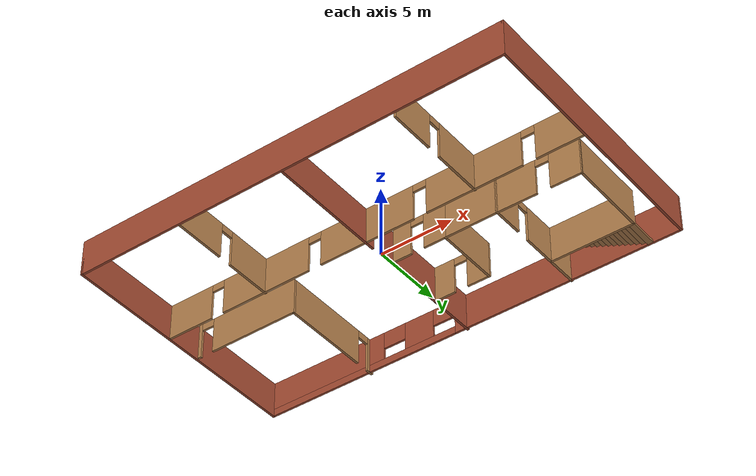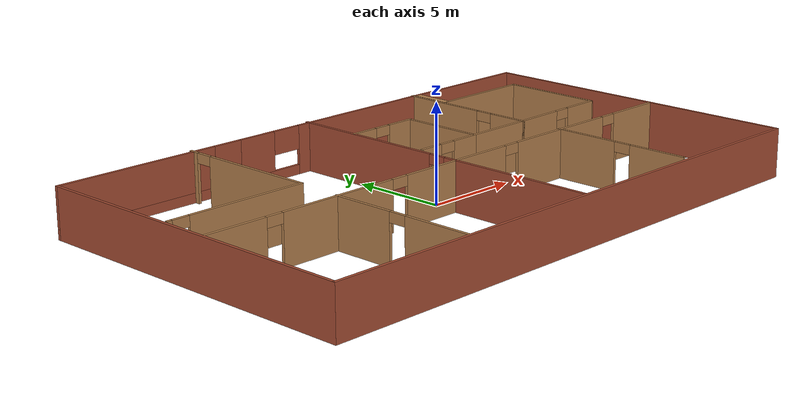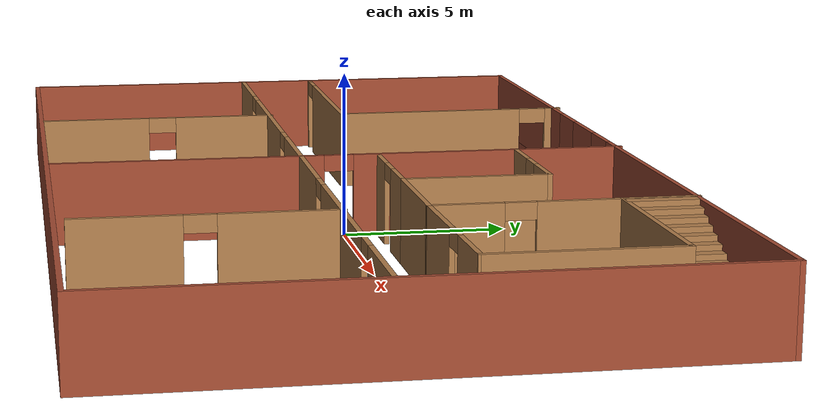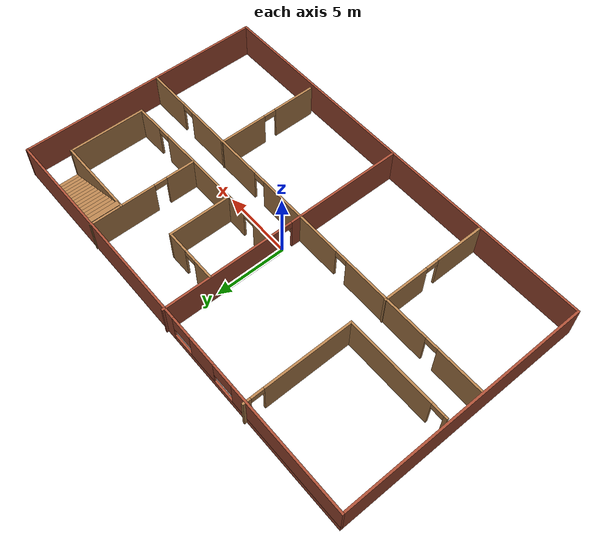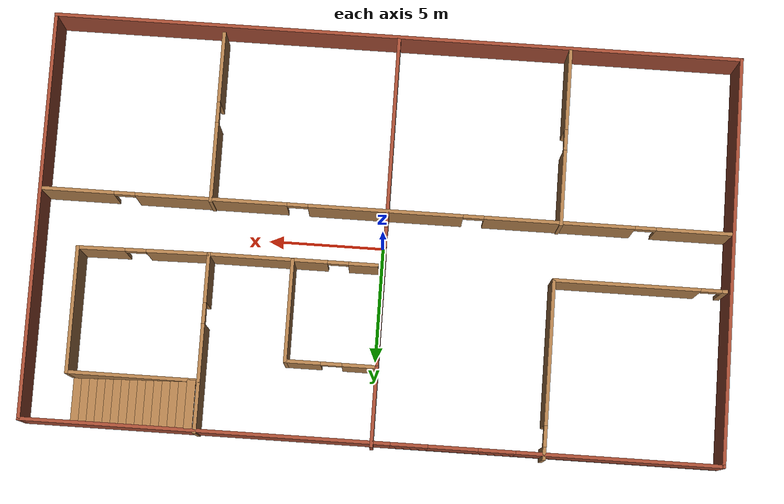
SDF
<?xml version='1.0'?>
<sdf version='1.6'>
  <model name='myoffice'>
    <pose frame=''>-0.068289 -0.110677 0 0 -0 0</pose>
    <link name='Stairs_0'>
      <visual name='Stairs_0_Visual_0'>
        <pose frame=''>12.9102 7.62798 0.083333 0 -0 -1.5708</pose>
        <geometry>
          <box>
            <size>2.0695 0.368539 0.166667</size>
          </box>
        </geometry>
        <material>
          <script>
            <uri>file://media/materials/scripts/gazebo.material</uri>
            <name>Gazebo/Wood</name>
          </script>
          <ambient>1 1 1 1</ambient>
        </material>
      </visual>
      <collision name='Stairs_0_Collision_0'>
        <geometry>
          <box>
            <size>2.0695 0.368539 0.166667</size>
          </box>
        </geometry>
        <pose frame=''>12.9102 7.62798 0.083333 0 -0 -1.5708</pose>
      </collision>
      <visual name='Stairs_0_Visual_1'>
        <pose frame=''>12.5417 7.62799 0.25 0 -0 -1.5708</pose>
        <geometry>
          <box>
            <size>2.0695 0.368539 0.166667</size>
          </box>
        </geometry>
        <material>
          <script>
            <uri>file://media/materials/scripts/gazebo.material</uri>
            <name>Gazebo/Wood</name>
          </script>
          <ambient>1 1 1 1</ambient>
        </material>
      </visual>
      <collision name='Stairs_0_Collision_1'>
        <geometry>
          <box>
            <size>2.0695 0.368539 0.166667</size>
          </box>
        </geometry>
        <pose frame=''>12.5417 7.62799 0.25 0 -0 -1.5708</pose>
      </collision>
      <visual name='Stairs_0_Visual_2'>
        <pose frame=''>12.1732 7.62799 0.416667 0 -0 -1.5708</pose>
        <geometry>
          <box>
            <size>2.0695 0.368539 0.166667</size>
          </box>
        </geometry>
        <material>
          <script>
            <uri>file://media/materials/scripts/gazebo.material</uri>
            <name>Gazebo/Wood</name>
          </script>
          <ambient>1 1 1 1</ambient>
        </material>
      </visual>
      <collision name='Stairs_0_Collision_2'>
        <geometry>
          <box>
            <size>2.0695 0.368539 0.166667</size>
          </box>
        </geometry>
        <pose frame=''>12.1732 7.62799 0.416667 0 -0 -1.5708</pose>
      </collision>
      <visual name='Stairs_0_Visual_3'>
        <pose frame=''>11.8046 7.62799 0.583333 0 -0 -1.5708</pose>
        <geometry>
          <box>
            <size>2.0695 0.368539 0.166667</size>
          </box>
        </geometry>
        <material>
          <script>
            <uri>file://media/materials/scripts/gazebo.material</uri>
            <name>Gazebo/Wood</name>
          </script>
          <ambient>1 1 1 1</ambient>
        </material>
      </visual>
      <collision name='Stairs_0_Collision_3'>
        <geometry>
          <box>
            <size>2.0695 0.368539 0.166667</size>
          </box>
        </geometry>
        <pose frame=''>11.8046 7.62799 0.583333 0 -0 -1.5708</pose>
      </collision>
      <visual name='Stairs_0_Visual_4'>
        <pose frame=''>11.4361 7.62799 0.75 0 -0 -1.5708</pose>
        <geometry>
          <box>
            <size>2.0695 0.368539 0.166667</size>
          </box>
        </geometry>
        <material>
          <script>
            <uri>file://media/materials/scripts/gazebo.material</uri>
            <name>Gazebo/Wood</name>
          </script>
          <ambient>1 1 1 1</ambient>
        </material>
      </visual>
      <collision name='Stairs_0_Collision_4'>
        <geometry>
          <box>
            <size>2.0695 0.368539 0.166667</size>
          </box>
        </geometry>
        <pose frame=''>11.4361 7.62799 0.75 0 -0 -1.5708</pose>
      </collision>
      <visual name='Stairs_0_Visual_5'>
        <pose frame=''>11.0675 7.62799 0.916667 0 -0 -1.5708</pose>
        <geometry>
          <box>
            <size>2.0695 0.368539 0.166667</size>
          </box>
        </geometry>
        <material>
          <script>
            <uri>file://media/materials/scripts/gazebo.material</uri>
            <name>Gazebo/Wood</name>
          </script>
          <ambient>1 1 1 1</ambient>
        </material>
      </visual>
      <collision name='Stairs_0_Collision_5'>
        <geometry>
          <box>
            <size>2.0695 0.368539 0.166667</size>
          </box>
        </geometry>
        <pose frame=''>11.0675 7.62799 0.916667 0 -0 -1.5708</pose>
      </collision>
      <visual name='Stairs_0_Visual_6'>
        <pose frame=''>10.699 7.62799 1.08333 0 -0 -1.5708</pose>
        <geometry>
          <box>
            <size>2.0695 0.368539 0.166667</size>
          </box>
        </geometry>
        <material>
          <script>
            <uri>file://media/materials/scripts/gazebo.material</uri>
            <name>Gazebo/Wood</name>
          </script>
          <ambient>1 1 1 1</ambient>
        </material>
      </visual>
      <collision name='Stairs_0_Collision_6'>
        <geometry>
          <box>
            <size>2.0695 0.368539 0.166667</size>
          </box>
        </geometry>
        <pose frame=''>10.699 7.62799 1.08333 0 -0 -1.5708</pose>
      </collision>
      <visual name='Stairs_0_Visual_7'>
        <pose frame=''>10.3305 7.62799 1.25 0 -0 -1.5708</pose>
        <geometry>
          <box>
            <size>2.0695 0.368539 0.166667</size>
          </box>
        </geometry>
        <material>
          <script>
            <uri>file://media/materials/scripts/gazebo.material</uri>
            <name>Gazebo/Wood</name>
          </script>
          <ambient>1 1 1 1</ambient>
        </material>
      </visual>
      <collision name='Stairs_0_Collision_7'>
        <geometry>
          <box>
            <size>2.0695 0.368539 0.166667</size>
          </box>
        </geometry>
        <pose frame=''>10.3305 7.62799 1.25 0 -0 -1.5708</pose>
      </collision>
      <visual name='Stairs_0_Visual_8'>
        <pose frame=''>9.96193 7.62799 1.41667 0 -0 -1.5708</pose>
        <geometry>
          <box>
            <size>2.0695 0.368539 0.166667</size>
          </box>
        </geometry>
        <material>
          <script>
            <uri>file://media/materials/scripts/gazebo.material</uri>
            <name>Gazebo/Wood</name>
          </script>
          <ambient>1 1 1 1</ambient>
        </material>
      </visual>
      <collision name='Stairs_0_Collision_8'>
        <geometry>
          <box>
            <size>2.0695 0.368539 0.166667</size>
          </box>
        </geometry>
        <pose frame=''>9.96193 7.62799 1.41667 0 -0 -1.5708</pose>
      </collision>
      <visual name='Stairs_0_Visual_9'>
        <pose frame=''>9.59339 7.62799 1.58333 0 -0 -1.5708</pose>
        <geometry>
          <box>
            <size>2.0695 0.368539 0.166667</size>
          </box>
        </geometry>
        <material>
          <script>
            <uri>file://media/materials/scripts/gazebo.material</uri>
            <name>Gazebo/Wood</name>
          </script>
          <ambient>1 1 1 1</ambient>
        </material>
      </visual>
      <collision name='Stairs_0_Collision_9'>
        <geometry>
          <box>
            <size>2.0695 0.368539 0.166667</size>
          </box>
        </geometry>
        <pose frame=''>9.59339 7.62799 1.58333 0 -0 -1.5708</pose>
      </collision>
      <visual name='Stairs_0_Visual_10'>
        <pose frame=''>9.22485 7.62799 1.75 0 -0 -1.5708</pose>
        <geometry>
          <box>
            <size>2.0695 0.368539 0.166667</size>
          </box>
        </geometry>
        <material>
          <script>
            <uri>file://media/materials/scripts/gazebo.material</uri>
            <name>Gazebo/Wood</name>
          </script>
          <ambient>1 1 1 1</ambient>
        </material>
      </visual>
      <collision name='Stairs_0_Collision_10'>
        <geometry>
          <box>
            <size>2.0695 0.368539 0.166667</size>
          </box>
        </geometry>
        <pose frame=''>9.22485 7.62799 1.75 0 -0 -1.5708</pose>
      </collision>
      <visual name='Stairs_0_Visual_11'>
        <pose frame=''>8.85631 7.62799 1.91667 0 -0 -1.5708</pose>
        <geometry>
          <box>
            <size>2.0695 0.368539 0.166667</size>
          </box>
        </geometry>
        <material>
          <script>
            <uri>file://media/materials/scripts/gazebo.material</uri>
            <name>Gazebo/Wood</name>
          </script>
          <ambient>1 1 1 1</ambient>
        </material>
      </visual>
      <collision name='Stairs_0_Collision_11'>
        <geometry>
          <box>
            <size>2.0695 0.368539 0.166667</size>
          </box>
        </geometry>
        <pose frame=''>8.85631 7.62799 1.91667 0 -0 -1.5708</pose>
      </collision>
      <visual name='Stairs_0_Visual_12'>
        <pose frame=''>8.48777 7.62799 2.08333 0 -0 -1.5708</pose>
        <geometry>
          <box>
            <size>2.0695 0.368539 0.166667</size>
          </box>
        </geometry>
        <material>
          <script>
            <uri>file://media/materials/scripts/gazebo.material</uri>
            <name>Gazebo/Wood</name>
          </script>
          <ambient>1 1 1 1</ambient>
        </material>
      </visual>
      <collision name='Stairs_0_Collision_12'>
        <geometry>
          <box>
            <size>2.0695 0.368539 0.166667</size>
          </box>
        </geometry>
        <pose frame=''>8.48777 7.62799 2.08333 0 -0 -1.5708</pose>
      </collision>
      <visual name='Stairs_0_Visual_13'>
        <pose frame=''>8.11923 7.62799 2.25 0 -0 -1.5708</pose>
        <geometry>
          <box>
            <size>2.0695 0.368539 0.166667</size>
          </box>
        </geometry>
        <material>
          <script>
            <uri>file://media/materials/scripts/gazebo.material</uri>
            <name>Gazebo/Wood</name>
          </script>
          <ambient>1 1 1 1</ambient>
        </material>
      </visual>
      <collision name='Stairs_0_Collision_13'>
        <geometry>
          <box>
            <size>2.0695 0.368539 0.166667</size>
          </box>
        </geometry>
        <pose frame=''>8.11923 7.62799 2.25 0 -0 -1.5708</pose>
      </collision>
      <visual name='Stairs_0_Visual_14'>
        <pose frame=''>7.75069 7.62799 2.41667 0 -0 -1.5708</pose>
        <geometry>
          <box>
            <size>2.0695 0.368539 0.166667</size>
          </box>
        </geometry>
        <material>
          <script>
            <uri>file://media/materials/scripts/gazebo.material</uri>
            <name>Gazebo/Wood</name>
          </script>
          <ambient>1 1 1 1</ambient>
        </material>
      </visual>
      <collision name='Stairs_0_Collision_14'>
        <geometry>
          <box>
            <size>2.0695 0.368539 0.166667</size>
          </box>
        </geometry>
        <pose frame=''>7.75069 7.62799 2.41667 0 -0 -1.5708</pose>
      </collision>
    </link>
    <link name='Wall_0'>
      <collision name='Wall_0_Collision'>
        <geometry>
          <box>
            <size>30 0.15 2.5</size>
          </box>
        </geometry>
        <pose frame=''>0 0 1.25 0 -0 0</pose>
      </collision>
      <visual name='Wall_0_Visual'>
        <pose frame=''>0 0 1.25 0 -0 0</pose>
        <geometry>
          <box>
            <size>30 0.15 2.5</size>
          </box>
        </geometry>
        <material>
          <script>
            <uri>file://media/materials/scripts/gazebo.material</uri>
            <name>Gazebo/Bricks</name>
          </script>
          <ambient>1 1 1 1</ambient>
        </material>
      </visual>
      <pose frame=''>0 -8.88607 0 0 -0 0</pose>
    </link>
    <link name='Wall_1'>
      <collision name='Wall_1_Collision'>
        <geometry>
          <box>
            <size>17.75 0.15 2.5</size>
          </box>
        </geometry>
        <pose frame=''>0 0 1.25 0 -0 0</pose>
      </collision>
      <visual name='Wall_1_Visual'>
        <pose frame=''>0 0 1.25 0 -0 0</pose>
        <geometry>
          <box>
            <size>17.75 0.15 2.5</size>
          </box>
        </geometry>
        <material>
          <script>
            <uri>file://media/materials/scripts/gazebo.material</uri>
            <name>Gazebo/Bricks</name>
          </script>
          <ambient>1 1 1 1</ambient>
        </material>
      </visual>
      <pose frame=''>14.925 -0.086067 0 0 -0 1.5708</pose>
    </link>
    <link name='Wall_10'>
      <pose frame=''>0.014571 -1.20962 0 0 -0 0</pose>
      <visual name='Wall_10_Visual_0'>
        <pose frame=''>-13.2337 0 1.25 0 -0 0</pose>
        <geometry>
          <box>
            <size>3.28259 0.15 2.5</size>
          </box>
        </geometry>
        <material>
          <script>
            <uri>file://media/materials/scripts/gazebo.material</uri>
            <name>Gazebo/Wood</name>
          </script>
          <ambient>1 1 1 1</ambient>
        </material>
      </visual>
      <collision name='Wall_10_Collision_0'>
        <geometry>
          <box>
            <size>3.28259 0.15 2.5</size>
          </box>
        </geometry>
        <pose frame=''>-13.2337 0 1.25 0 -0 0</pose>
      </collision>
      <visual name='Wall_10_Visual_1'>
        <pose frame=''>-7.45072 0 1.25 0 -0 0</pose>
        <geometry>
          <box>
            <size>6.48338 0.15 2.5</size>
          </box>
        </geometry>
        <material>
          <script>
            <uri>file://media/materials/scripts/gazebo.material</uri>
            <name>Gazebo/Wood</name>
          </script>
          <ambient>1 1 1 1</ambient>
        </material>
      </visual>
      <collision name='Wall_10_Collision_1'>
        <geometry>
          <box>
            <size>6.48338 0.15 2.5</size>
          </box>
        </geometry>
        <pose frame=''>-7.45072 0 1.25 0 -0 0</pose>
      </collision>
      <visual name='Wall_10_Visual_2'>
        <pose frame=''>0.032029 0 1.25 0 -0 0</pose>
        <geometry>
          <box>
            <size>6.68213 0.15 2.5</size>
          </box>
        </geometry>
        <material>
          <script>
            <uri>file://media/materials/scripts/gazebo.material</uri>
            <name>Gazebo/Wood</name>
          </script>
          <ambient>1 1 1 1</ambient>
        </material>
      </visual>
      <collision name='Wall_10_Collision_2'>
        <geometry>
          <box>
            <size>6.68213 0.15 2.5</size>
          </box>
        </geometry>
        <pose frame=''>0.032029 0 1.25 0 -0 0</pose>
      </collision>
      <visual name='Wall_10_Visual_3'>
        <pose frame=''>7.54712 0 1.25 0 -0 0</pose>
        <geometry>
          <box>
            <size>6.54805 0.15 2.5</size>
          </box>
        </geometry>
        <material>
          <script>
            <uri>file://media/materials/scripts/gazebo.material</uri>
            <name>Gazebo/Wood</name>
          </script>
          <ambient>1 1 1 1</ambient>
        </material>
      </visual>
      <collision name='Wall_10_Collision_3'>
        <geometry>
          <box>
            <size>6.54805 0.15 2.5</size>
          </box>
        </geometry>
        <pose frame=''>7.54712 0 1.25 0 -0 0</pose>
      </collision>
      <visual name='Wall_10_Visual_4'>
        <pose frame=''>13.2981 0 1.25 0 -0 0</pose>
        <geometry>
          <box>
            <size>3.15385 0.15 2.5</size>
          </box>
        </geometry>
        <material>
          <script>
            <uri>file://media/materials/scripts/gazebo.material</uri>
            <name>Gazebo/Wood</name>
          </script>
          <ambient>1 1 1 1</ambient>
        </material>
      </visual>
      <collision name='Wall_10_Collision_4'>
        <geometry>
          <box>
            <size>3.15385 0.15 2.5</size>
          </box>
        </geometry>
        <pose frame=''>13.2981 0 1.25 0 -0 0</pose>
      </collision>
      <visual name='Wall_10_Visual_5'>
        <pose frame=''>-11.1424 0 2.25 0 -0 0</pose>
        <geometry>
          <box>
            <size>0.9 0.15 0.5</size>
          </box>
        </geometry>
        <material>
          <script>
            <uri>file://media/materials/scripts/gazebo.material</uri>
            <name>Gazebo/Wood</name>
          </script>
          <ambient>1 1 1 1</ambient>
        </material>
      </visual>
      <collision name='Wall_10_Collision_5'>
        <geometry>
          <box>
            <size>0.9 0.15 0.5</size>
          </box>
        </geometry>
        <pose frame=''>-11.1424 0 2.25 0 -0 0</pose>
      </collision>
      <visual name='Wall_10_Visual_6'>
        <pose frame=''>-3.75903 0 2.25 0 -0 0</pose>
        <geometry>
          <box>
            <size>0.9 0.15 0.5</size>
          </box>
        </geometry>
        <material>
          <script>
            <uri>file://media/materials/scripts/gazebo.material</uri>
            <name>Gazebo/Wood</name>
          </script>
          <ambient>1 1 1 1</ambient>
        </material>
      </visual>
      <collision name='Wall_10_Collision_6'>
        <geometry>
          <box>
            <size>0.9 0.15 0.5</size>
          </box>
        </geometry>
        <pose frame=''>-3.75903 0 2.25 0 -0 0</pose>
      </collision>
      <visual name='Wall_10_Visual_7'>
        <pose frame=''>3.82309 0 2.25 0 -0 0</pose>
        <geometry>
          <box>
            <size>0.9 0.15 0.5</size>
          </box>
        </geometry>
        <material>
          <script>
            <uri>file://media/materials/scripts/gazebo.material</uri>
            <name>Gazebo/Wood</name>
          </script>
          <ambient>1 1 1 1</ambient>
        </material>
      </visual>
      <collision name='Wall_10_Collision_7'>
        <geometry>
          <box>
            <size>0.9 0.15 0.5</size>
          </box>
        </geometry>
        <pose frame=''>3.82309 0 2.25 0 -0 0</pose>
      </collision>
      <visual name='Wall_10_Visual_8'>
        <pose frame=''>11.2711 0 2.25 0 -0 0</pose>
        <geometry>
          <box>
            <size>0.9 0.15 0.5</size>
          </box>
        </geometry>
        <material>
          <script>
            <uri>file://media/materials/scripts/gazebo.material</uri>
            <name>Gazebo/Wood</name>
          </script>
          <ambient>1 1 1 1</ambient>
        </material>
      </visual>
      <collision name='Wall_10_Collision_8'>
        <geometry>
          <box>
            <size>0.9 0.15 0.5</size>
          </box>
        </geometry>
        <pose frame=''>11.2711 0 2.25 0 -0 0</pose>
      </collision>
    </link>
    <link name='Wall_12'>
      <pose frame=''>7.46277 4.96931 0 0 0 -1.5708</pose>
      <visual name='Wall_12_Visual_0'>
        <pose frame=''>-1.53543 0 1.25 0 -0 0</pose>
        <geometry>
          <box>
            <size>4.67913 0.15 2.5</size>
          </box>
        </geometry>
        <material>
          <script>
            <uri>file://media/materials/scripts/gazebo.material</uri>
            <name>Gazebo/Wood</name>
          </script>
          <ambient>1 1 1 1</ambient>
        </material>
      </visual>
      <collision name='Wall_12_Collision_0'>
        <geometry>
          <box>
            <size>4.67913 0.15 2.5</size>
          </box>
        </geometry>
        <pose frame=''>-1.53543 0 1.25 0 -0 0</pose>
      </collision>
      <visual name='Wall_12_Visual_1'>
        <pose frame=''>2.78957 0 1.25 0 -0 0</pose>
        <geometry>
          <box>
            <size>2.17087 0.15 2.5</size>
          </box>
        </geometry>
        <material>
          <script>
            <uri>file://media/materials/scripts/gazebo.material</uri>
            <name>Gazebo/Wood</name>
          </script>
          <ambient>1 1 1 1</ambient>
        </material>
      </visual>
      <collision name='Wall_12_Collision_1'>
        <geometry>
          <box>
            <size>2.17087 0.15 2.5</size>
          </box>
        </geometry>
        <pose frame=''>2.78957 0 1.25 0 -0 0</pose>
      </collision>
      <visual name='Wall_12_Visual_2'>
        <pose frame=''>1.25413 0 2.25 0 -0 0</pose>
        <geometry>
          <box>
            <size>0.9 0.15 0.5</size>
          </box>
        </geometry>
        <material>
          <script>
            <uri>file://media/materials/scripts/gazebo.material</uri>
            <name>Gazebo/Wood</name>
          </script>
          <ambient>1 1 1 1</ambient>
        </material>
      </visual>
      <collision name='Wall_12_Collision_2'>
        <geometry>
          <box>
            <size>0.9 0.15 0.5</size>
          </box>
        </geometry>
        <pose frame=''>1.25413 0 2.25 0 -0 0</pose>
      </collision>
    </link>
    <link name='Wall_13'>
      <collision name='Wall_13_Collision'>
        <geometry>
          <box>
            <size>3.75 0.15 2.5</size>
          </box>
        </geometry>
        <pose frame=''>0 0 1.25 0 -0 0</pose>
      </collision>
      <visual name='Wall_13_Visual'>
        <pose frame=''>0 0 1.25 0 -0 0</pose>
        <geometry>
          <box>
            <size>3.75 0.15 2.5</size>
          </box>
        </geometry>
        <material>
          <script>
            <uri>file://media/materials/scripts/gazebo.material</uri>
            <name>Gazebo/Wood</name>
          </script>
          <ambient>1 1 1 1</ambient>
        </material>
      </visual>
      <pose frame=''>5.66277 1.16931 0 0 -0 3.14159</pose>
    </link>
    <link name='Wall_14'>
      <collision name='Wall_14_Collision'>
        <geometry>
          <box>
            <size>4.5 0.15 2.5</size>
          </box>
        </geometry>
        <pose frame=''>0 0 1.25 0 -0 0</pose>
      </collision>
      <visual name='Wall_14_Visual'>
        <pose frame=''>0 0 1.25 0 -0 0</pose>
        <geometry>
          <box>
            <size>4.5 0.15 2.5</size>
          </box>
        </geometry>
        <material>
          <script>
            <uri>file://media/materials/scripts/gazebo.material</uri>
            <name>Gazebo/Wood</name>
          </script>
          <ambient>1 1 1 1</ambient>
        </material>
      </visual>
      <pose frame=''>3.86277 3.34431 0 0 -0 1.5708</pose>
    </link>
    <link name='Wall_15'>
      <pose frame=''>1.93777 5.51931 0 0 -0 3.14159</pose>
      <visual name='Wall_15_Visual_0'>
        <pose frame=''>-1.20346 0 1.25 0 -0 0</pose>
        <geometry>
          <box>
            <size>1.59308 0.15 2.5</size>
          </box>
        </geometry>
        <material>
          <script>
            <uri>file://media/materials/scripts/gazebo.material</uri>
            <name>Gazebo/Wood</name>
          </script>
          <ambient>1 1 1 1</ambient>
        </material>
      </visual>
      <collision name='Wall_15_Collision_0'>
        <geometry>
          <box>
            <size>1.59308 0.15 2.5</size>
          </box>
        </geometry>
        <pose frame=''>-1.20346 0 1.25 0 -0 0</pose>
      </collision>
      <visual name='Wall_15_Visual_1'>
        <pose frame=''>1.24654 0 1.25 0 -0 0</pose>
        <geometry>
          <box>
            <size>1.50692 0.15 2.5</size>
          </box>
        </geometry>
        <material>
          <script>
            <uri>file://media/materials/scripts/gazebo.material</uri>
            <name>Gazebo/Wood</name>
          </script>
          <ambient>1 1 1 1</ambient>
        </material>
      </visual>
      <collision name='Wall_15_Collision_1'>
        <geometry>
          <box>
            <size>1.50692 0.15 2.5</size>
          </box>
        </geometry>
        <pose frame=''>1.24654 0 1.25 0 -0 0</pose>
      </collision>
      <visual name='Wall_15_Visual_2'>
        <pose frame=''>0.043082 0 2.25 0 -0 0</pose>
        <geometry>
          <box>
            <size>0.9 0.15 0.5</size>
          </box>
        </geometry>
        <material>
          <script>
            <uri>file://media/materials/scripts/gazebo.material</uri>
            <name>Gazebo/Wood</name>
          </script>
          <ambient>1 1 1 1</ambient>
        </material>
      </visual>
      <collision name='Wall_15_Collision_2'>
        <geometry>
          <box>
            <size>0.9 0.15 0.5</size>
          </box>
        </geometry>
        <pose frame=''>0.043082 0 2.25 0 -0 0</pose>
      </collision>
    </link>
    <link name='Wall_17'>
      <pose frame=''>-7.5062 -4.9601 0 0 0 -1.5708</pose>
      <visual name='Wall_17_Visual_0'>
        <pose frame=''>-2.21819 0 1.25 0 -0 0</pose>
        <geometry>
          <box>
            <size>3.31361 0.15 2.5</size>
          </box>
        </geometry>
        <material>
          <script>
            <uri>file://media/materials/scripts/gazebo.material</uri>
            <name>Gazebo/Wood</name>
          </script>
          <ambient>1 1 1 1</ambient>
        </material>
      </visual>
      <collision name='Wall_17_Collision_0'>
        <geometry>
          <box>
            <size>3.31361 0.15 2.5</size>
          </box>
        </geometry>
        <pose frame=''>-2.21819 0 1.25 0 -0 0</pose>
      </collision>
      <visual name='Wall_17_Visual_1'>
        <pose frame=''>2.10681 0 1.25 0 -0 0</pose>
        <geometry>
          <box>
            <size>3.53639 0.15 2.5</size>
          </box>
        </geometry>
        <material>
          <script>
            <uri>file://media/materials/scripts/gazebo.material</uri>
            <name>Gazebo/Wood</name>
          </script>
          <ambient>1 1 1 1</ambient>
        </material>
      </visual>
      <collision name='Wall_17_Collision_1'>
        <geometry>
          <box>
            <size>3.53639 0.15 2.5</size>
          </box>
        </geometry>
        <pose frame=''>2.10681 0 1.25 0 -0 0</pose>
      </collision>
      <visual name='Wall_17_Visual_2'>
        <pose frame=''>-0.111386 0 2.25 0 -0 0</pose>
        <geometry>
          <box>
            <size>0.9 0.15 0.5</size>
          </box>
        </geometry>
        <material>
          <script>
            <uri>file://media/materials/scripts/gazebo.material</uri>
            <name>Gazebo/Wood</name>
          </script>
          <ambient>1 1 1 1</ambient>
        </material>
      </visual>
      <collision name='Wall_17_Collision_2'>
        <geometry>
          <box>
            <size>0.9 0.15 0.5</size>
          </box>
        </geometry>
        <pose frame=''>-0.111386 0 2.25 0 -0 0</pose>
      </collision>
    </link>
    <link name='Wall_19'>
      <pose frame=''>7.56754 -4.8351 0 0 0 -1.5708</pose>
      <visual name='Wall_19_Visual_0'>
        <pose frame=''>-2.00346 0 1.25 0 -0 0</pose>
        <geometry>
          <box>
            <size>3.49309 0.15 2.5</size>
          </box>
        </geometry>
        <material>
          <script>
            <uri>file://media/materials/scripts/gazebo.material</uri>
            <name>Gazebo/Wood</name>
          </script>
          <ambient>1 1 1 1</ambient>
        </material>
      </visual>
      <collision name='Wall_19_Collision_0'>
        <geometry>
          <box>
            <size>3.49309 0.15 2.5</size>
          </box>
        </geometry>
        <pose frame=''>-2.00346 0 1.25 0 -0 0</pose>
      </collision>
      <visual name='Wall_19_Visual_1'>
        <pose frame=''>2.19654 0 1.25 0 -0 0</pose>
        <geometry>
          <box>
            <size>3.10691 0.15 2.5</size>
          </box>
        </geometry>
        <material>
          <script>
            <uri>file://media/materials/scripts/gazebo.material</uri>
            <name>Gazebo/Wood</name>
          </script>
          <ambient>1 1 1 1</ambient>
        </material>
      </visual>
      <collision name='Wall_19_Collision_1'>
        <geometry>
          <box>
            <size>3.10691 0.15 2.5</size>
          </box>
        </geometry>
        <pose frame=''>2.19654 0 1.25 0 -0 0</pose>
      </collision>
      <visual name='Wall_19_Visual_2'>
        <pose frame=''>0.193091 0 2.25 0 -0 0</pose>
        <geometry>
          <box>
            <size>0.9 0.15 0.5</size>
          </box>
        </geometry>
        <material>
          <script>
            <uri>file://media/materials/scripts/gazebo.material</uri>
            <name>Gazebo/Wood</name>
          </script>
          <ambient>1 1 1 1</ambient>
        </material>
      </visual>
      <collision name='Wall_19_Collision_2'>
        <geometry>
          <box>
            <size>0.9 0.15 0.5</size>
          </box>
        </geometry>
        <pose frame=''>0.193091 0 2.25 0 -0 0</pose>
      </collision>
    </link>
    <link name='Wall_2'>
      <pose frame=''>0 8.71393 0 0 -0 3.14159</pose>
      <visual name='Wall_2_Visual_0'>
        <pose frame=''>-7.08942 0 1.25 0 -0 0</pose>
        <geometry>
          <box>
            <size>15.8212 0.15 2.5</size>
          </box>
        </geometry>
        <material>
          <script>
            <uri>file://media/materials/scripts/gazebo.material</uri>
            <name>Gazebo/Bricks</name>
          </script>
          <ambient>1 1 1 1</ambient>
        </material>
      </visual>
      <collision name='Wall_2_Collision_0'>
        <geometry>
          <box>
            <size>15.8212 0.15 2.5</size>
          </box>
        </geometry>
        <pose frame=''>-7.08942 0 1.25 0 -0 0</pose>
      </collision>
      <visual name='Wall_2_Visual_1'>
        <pose frame=''>7.91058 0 0.25 0 -0 0</pose>
        <geometry>
          <box>
            <size>14.1788 0.15 0.5</size>
          </box>
        </geometry>
        <material>
          <script>
            <uri>file://media/materials/scripts/gazebo.material</uri>
            <name>Gazebo/Bricks</name>
          </script>
          <ambient>1 1 1 1</ambient>
        </material>
      </visual>
      <collision name='Wall_2_Collision_1'>
        <geometry>
          <box>
            <size>14.1788 0.15 0.5</size>
          </box>
        </geometry>
        <pose frame=''>7.91058 0 0.25 0 -0 0</pose>
      </collision>
      <visual name='Wall_2_Visual_2'>
        <pose frame=''>3.48317 0 1.5 0 -0 0</pose>
        <geometry>
          <box>
            <size>2.12403 0.15 2</size>
          </box>
        </geometry>
        <material>
          <script>
            <uri>file://media/materials/scripts/gazebo.material</uri>
            <name>Gazebo/Bricks</name>
          </script>
          <ambient>1 1 1 1</ambient>
        </material>
      </visual>
      <collision name='Wall_2_Collision_2'>
        <geometry>
          <box>
            <size>2.12403 0.15 2</size>
          </box>
        </geometry>
        <pose frame=''>3.48317 0 1.5 0 -0 0</pose>
      </collision>
      <visual name='Wall_2_Visual_3'>
        <pose frame=''>10.5726 0 1.5 0 -0 0</pose>
        <geometry>
          <box>
            <size>8.85481 0.15 2</size>
          </box>
        </geometry>
        <material>
          <script>
            <uri>file://media/materials/scripts/gazebo.material</uri>
            <name>Gazebo/Bricks</name>
          </script>
          <ambient>1 1 1 1</ambient>
        </material>
      </visual>
      <collision name='Wall_2_Collision_3'>
        <geometry>
          <box>
            <size>8.85481 0.15 2</size>
          </box>
        </geometry>
        <pose frame=''>10.5726 0 1.5 0 -0 0</pose>
      </collision>
      <visual name='Wall_2_Visual_4'>
        <pose frame=''>1.62116 0 1.9 0 -0 0</pose>
        <geometry>
          <box>
            <size>1.6 0.15 1.2</size>
          </box>
        </geometry>
        <material>
          <script>
            <uri>file://media/materials/scripts/gazebo.material</uri>
            <name>Gazebo/Bricks</name>
          </script>
          <ambient>1 1 1 1</ambient>
        </material>
      </visual>
      <collision name='Wall_2_Collision_4'>
        <geometry>
          <box>
            <size>1.6 0.15 1.2</size>
          </box>
        </geometry>
        <pose frame=''>1.62116 0 1.9 0 -0 0</pose>
      </collision>
      <visual name='Wall_2_Visual_5'>
        <pose frame=''>5.34519 0 1.9 0 -0 0</pose>
        <geometry>
          <box>
            <size>1.6 0.15 1.2</size>
          </box>
        </geometry>
        <material>
          <script>
            <uri>file://media/materials/scripts/gazebo.material</uri>
            <name>Gazebo/Bricks</name>
          </script>
          <ambient>1 1 1 1</ambient>
        </material>
      </visual>
      <collision name='Wall_2_Collision_5'>
        <geometry>
          <box>
            <size>1.6 0.15 1.2</size>
          </box>
        </geometry>
        <pose frame=''>5.34519 0 1.9 0 -0 0</pose>
      </collision>
    </link>
    <link name='Wall_23'>
      <pose frame=''>2.06277 1.16931 0 0 -0 3.14159</pose>
      <visual name='Wall_23_Visual_0'>
        <pose frame=''>-1.09002 0 1.25 0 -0 0</pose>
        <geometry>
          <box>
            <size>1.56995 0.15 2.5</size>
          </box>
        </geometry>
        <material>
          <script>
            <uri>file://media/materials/scripts/gazebo.material</uri>
            <name>Gazebo/Wood</name>
          </script>
          <ambient>1 1 1 1</ambient>
        </material>
      </visual>
      <collision name='Wall_23_Collision_0'>
        <geometry>
          <box>
            <size>1.56995 0.15 2.5</size>
          </box>
        </geometry>
        <pose frame=''>-1.09002 0 1.25 0 -0 0</pose>
      </collision>
      <visual name='Wall_23_Visual_1'>
        <pose frame=''>1.23498 0 1.25 0 -0 0</pose>
        <geometry>
          <box>
            <size>1.28005 0.15 2.5</size>
          </box>
        </geometry>
        <material>
          <script>
            <uri>file://media/materials/scripts/gazebo.material</uri>
            <name>Gazebo/Wood</name>
          </script>
          <ambient>1 1 1 1</ambient>
        </material>
      </visual>
      <collision name='Wall_23_Collision_1'>
        <geometry>
          <box>
            <size>1.28005 0.15 2.5</size>
          </box>
        </geometry>
        <pose frame=''>1.23498 0 1.25 0 -0 0</pose>
      </collision>
      <visual name='Wall_23_Visual_2'>
        <pose frame=''>0.144952 0 2.25 0 -0 0</pose>
        <geometry>
          <box>
            <size>0.9 0.15 0.5</size>
          </box>
        </geometry>
        <material>
          <script>
            <uri>file://media/materials/scripts/gazebo.material</uri>
            <name>Gazebo/Wood</name>
          </script>
          <ambient>1 1 1 1</ambient>
        </material>
      </visual>
      <collision name='Wall_23_Collision_2'>
        <geometry>
          <box>
            <size>0.9 0.15 0.5</size>
          </box>
        </geometry>
        <pose frame=''>0.144952 0 2.25 0 -0 0</pose>
      </collision>
    </link>
    <link name='Wall_25'>
      <collision name='Wall_25_Collision'>
        <geometry>
          <box>
            <size>5.75 0.15 2.5</size>
          </box>
        </geometry>
        <pose frame=''>0 0 1.25 0 -0 0</pose>
      </collision>
      <visual name='Wall_25_Visual'>
        <pose frame=''>0 0 1.25 0 -0 0</pose>
        <geometry>
          <box>
            <size>5.75 0.15 2.5</size>
          </box>
        </geometry>
        <material>
          <script>
            <uri>file://media/materials/scripts/gazebo.material</uri>
            <name>Gazebo/Wood</name>
          </script>
          <ambient>1 1 1 1</ambient>
        </material>
      </visual>
      <pose frame=''>10.2782 6.6062 0 0 -0 3.14159</pose>
    </link>
    <link name='Wall_27'>
      <collision name='Wall_27_Collision'>
        <geometry>
          <box>
            <size>5.5 0.15 2.5</size>
          </box>
        </geometry>
        <pose frame=''>0 0 1.25 0 -0 0</pose>
      </collision>
      <visual name='Wall_27_Visual'>
        <pose frame=''>0 0 1.25 0 -0 0</pose>
        <geometry>
          <box>
            <size>5.5 0.15 2.5</size>
          </box>
        </geometry>
        <material>
          <script>
            <uri>file://media/materials/scripts/gazebo.material</uri>
            <name>Gazebo/Wood</name>
          </script>
          <ambient>1 1 1 1</ambient>
        </material>
      </visual>
      <pose frame=''>13.0782 3.9312 0 0 0 -1.5708</pose>
    </link>
    <link name='Wall_28'>
      <pose frame=''>10.2705 1.21275 0 0 0 -3.12612</pose>
      <visual name='Wall_28_Visual_0'>
        <pose frame=''>-1.82719 0 1.25 0 -0 0</pose>
        <geometry>
          <box>
            <size>2.11166 0.15 2.5</size>
          </box>
        </geometry>
        <material>
          <script>
            <uri>file://media/materials/scripts/gazebo.material</uri>
            <name>Gazebo/Wood</name>
          </script>
          <ambient>1 1 1 1</ambient>
        </material>
      </visual>
      <collision name='Wall_28_Collision_0'>
        <geometry>
          <box>
            <size>2.11166 0.15 2.5</size>
          </box>
        </geometry>
        <pose frame=''>-1.82719 0 1.25 0 -0 0</pose>
      </collision>
      <visual name='Wall_28_Visual_1'>
        <pose frame=''>1.50583 0 1.25 0 -0 0</pose>
        <geometry>
          <box>
            <size>2.75439 0.15 2.5</size>
          </box>
        </geometry>
        <material>
          <script>
            <uri>file://media/materials/scripts/gazebo.material</uri>
            <name>Gazebo/Wood</name>
          </script>
          <ambient>1 1 1 1</ambient>
        </material>
      </visual>
      <collision name='Wall_28_Collision_1'>
        <geometry>
          <box>
            <size>2.75439 0.15 2.5</size>
          </box>
        </geometry>
        <pose frame=''>1.50583 0 1.25 0 -0 0</pose>
      </collision>
      <visual name='Wall_28_Visual_2'>
        <pose frame=''>-0.321367 0 2.25 0 -0 0</pose>
        <geometry>
          <box>
            <size>0.9 0.15 0.5</size>
          </box>
        </geometry>
        <material>
          <script>
            <uri>file://media/materials/scripts/gazebo.material</uri>
            <name>Gazebo/Wood</name>
          </script>
          <ambient>1 1 1 1</ambient>
        </material>
      </visual>
      <collision name='Wall_28_Collision_2'>
        <geometry>
          <box>
            <size>0.9 0.15 0.5</size>
          </box>
        </geometry>
        <pose frame=''>-0.321367 0 2.25 0 -0 0</pose>
      </collision>
    </link>
    <link name='Wall_3'>
      <collision name='Wall_3_Collision'>
        <geometry>
          <box>
            <size>17.75 0.15 2.5</size>
          </box>
        </geometry>
        <pose frame=''>0 0 1.25 0 -0 0</pose>
      </collision>
      <visual name='Wall_3_Visual'>
        <pose frame=''>0 0 1.25 0 -0 0</pose>
        <geometry>
          <box>
            <size>17.75 0.15 2.5</size>
          </box>
        </geometry>
        <material>
          <script>
            <uri>file://media/materials/scripts/gazebo.material</uri>
            <name>Gazebo/Bricks</name>
          </script>
          <ambient>1 1 1 1</ambient>
        </material>
      </visual>
      <pose frame=''>-14.925 -0.086067 0 0 0 -1.5708</pose>
    </link>
    <link name='Wall_5'>
      <pose frame=''>-7.3416 5.08607 0 0 0 -1.5708</pose>
      <visual name='Wall_5_Visual_0'>
        <pose frame=''>-3.59351 0 1.25 0 -0 0</pose>
        <geometry>
          <box>
            <size>0.562988 0.15 2.5</size>
          </box>
        </geometry>
        <material>
          <script>
            <uri>file://media/materials/scripts/gazebo.material</uri>
            <name>Gazebo/Wood</name>
          </script>
          <ambient>1 1 1 1</ambient>
        </material>
      </visual>
      <collision name='Wall_5_Collision_0'>
        <geometry>
          <box>
            <size>0.562988 0.15 2.5</size>
          </box>
        </geometry>
        <pose frame=''>-3.59351 0 1.25 0 -0 0</pose>
      </collision>
      <visual name='Wall_5_Visual_1'>
        <pose frame=''>0.731494 0 1.25 0 -0 0</pose>
        <geometry>
          <box>
            <size>6.28701 0.15 2.5</size>
          </box>
        </geometry>
        <material>
          <script>
            <uri>file://media/materials/scripts/gazebo.material</uri>
            <name>Gazebo/Wood</name>
          </script>
          <ambient>1 1 1 1</ambient>
        </material>
      </visual>
      <collision name='Wall_5_Collision_1'>
        <geometry>
          <box>
            <size>6.28701 0.15 2.5</size>
          </box>
        </geometry>
        <pose frame=''>0.731494 0 1.25 0 -0 0</pose>
      </collision>
      <visual name='Wall_5_Visual_2'>
        <pose frame=''>-2.86201 0 2.25 0 -0 0</pose>
        <geometry>
          <box>
            <size>0.9 0.15 0.5</size>
          </box>
        </geometry>
        <material>
          <script>
            <uri>file://media/materials/scripts/gazebo.material</uri>
            <name>Gazebo/Wood</name>
          </script>
          <ambient>1 1 1 1</ambient>
        </material>
      </visual>
      <collision name='Wall_5_Collision_2'>
        <geometry>
          <box>
            <size>0.9 0.15 0.5</size>
          </box>
        </geometry>
        <pose frame=''>-2.86201 0 2.25 0 -0 0</pose>
      </collision>
    </link>
    <link name='Wall_6'>
      <pose frame=''>-11.0166 1.28607 0 0 -0 3.14159</pose>
      <visual name='Wall_6_Visual_0'>
        <pose frame=''>-0.575587 0 1.25 0 -0 0</pose>
        <geometry>
          <box>
            <size>6.34882 0.15 2.5</size>
          </box>
        </geometry>
        <material>
          <script>
            <uri>file://media/materials/scripts/gazebo.material</uri>
            <name>Gazebo/Wood</name>
          </script>
          <ambient>1 1 1 1</ambient>
        </material>
      </visual>
      <collision name='Wall_6_Collision_0'>
        <geometry>
          <box>
            <size>6.34882 0.15 2.5</size>
          </box>
        </geometry>
        <pose frame=''>-0.575587 0 1.25 0 -0 0</pose>
      </collision>
      <visual name='Wall_6_Visual_1'>
        <pose frame=''>3.62441 0 1.25 0 -0 0</pose>
        <geometry>
          <box>
            <size>0.251175 0.15 2.5</size>
          </box>
        </geometry>
        <material>
          <script>
            <uri>file://media/materials/scripts/gazebo.material</uri>
            <name>Gazebo/Wood</name>
          </script>
          <ambient>1 1 1 1</ambient>
        </material>
      </visual>
      <collision name='Wall_6_Collision_1'>
        <geometry>
          <box>
            <size>0.251175 0.15 2.5</size>
          </box>
        </geometry>
        <pose frame=''>3.62441 0 1.25 0 -0 0</pose>
      </collision>
      <visual name='Wall_6_Visual_2'>
        <pose frame=''>3.04882 0 2.25 0 -0 0</pose>
        <geometry>
          <box>
            <size>0.9 0.15 0.5</size>
          </box>
        </geometry>
        <material>
          <script>
            <uri>file://media/materials/scripts/gazebo.material</uri>
            <name>Gazebo/Wood</name>
          </script>
          <ambient>1 1 1 1</ambient>
        </material>
      </visual>
      <collision name='Wall_6_Collision_2'>
        <geometry>
          <box>
            <size>0.9 0.15 0.5</size>
          </box>
        </geometry>
        <pose frame=''>3.04882 0 2.25 0 -0 0</pose>
      </collision>
    </link>
    <link name='Wall_8'>
      <pose frame=''>-0.037348 0.039544 0 0 0 -1.5708</pose>
      <visual name='Wall_8_Visual_0'>
        <pose frame=''>-4.61517 0 1.25 0 -0 0</pose>
        <geometry>
          <box>
            <size>8.51965 0.15 2.5</size>
          </box>
        </geometry>
        <material>
          <script>
            <uri>file://media/materials/scripts/gazebo.material</uri>
            <name>Gazebo/Bricks</name>
          </script>
          <ambient>1 1 1 1</ambient>
        </material>
      </visual>
      <collision name='Wall_8_Collision_0'>
        <geometry>
          <box>
            <size>8.51965 0.15 2.5</size>
          </box>
        </geometry>
        <pose frame=''>-4.61517 0 1.25 0 -0 0</pose>
      </collision>
      <visual name='Wall_8_Visual_1'>
        <pose frame=''>4.70983 0 1.25 0 -0 0</pose>
        <geometry>
          <box>
            <size>8.33035 0.15 2.5</size>
          </box>
        </geometry>
        <material>
          <script>
            <uri>file://media/materials/scripts/gazebo.material</uri>
            <name>Gazebo/Bricks</name>
          </script>
          <ambient>1 1 1 1</ambient>
        </material>
      </visual>
      <collision name='Wall_8_Collision_1'>
        <geometry>
          <box>
            <size>8.33035 0.15 2.5</size>
          </box>
        </geometry>
        <pose frame=''>4.70983 0 1.25 0 -0 0</pose>
      </collision>
      <visual name='Wall_8_Visual_2'>
        <pose frame=''>0.094654 0 2.25 0 -0 0</pose>
        <geometry>
          <box>
            <size>0.9 0.15 0.5</size>
          </box>
        </geometry>
        <material>
          <script>
            <uri>file://media/materials/scripts/gazebo.material</uri>
            <name>Gazebo/Bricks</name>
          </script>
          <ambient>1 1 1 1</ambient>
        </material>
      </visual>
      <collision name='Wall_8_Collision_2'>
        <geometry>
          <box>
            <size>0.9 0.15 0.5</size>
          </box>
        </geometry>
        <pose frame=''>0.094654 0 2.25 0 -0 0</pose>
      </collision>
    </link>
    <static>1</static>
  </model>
</sdf>
